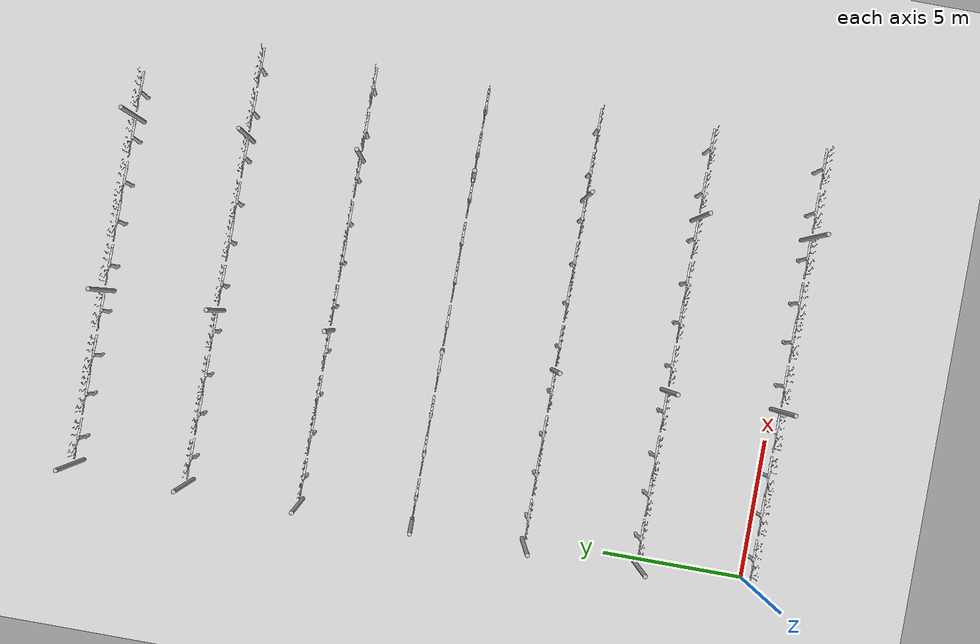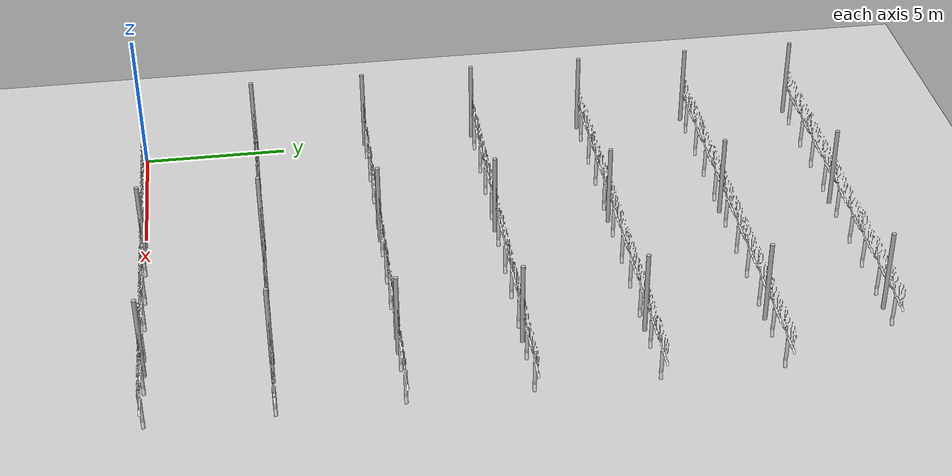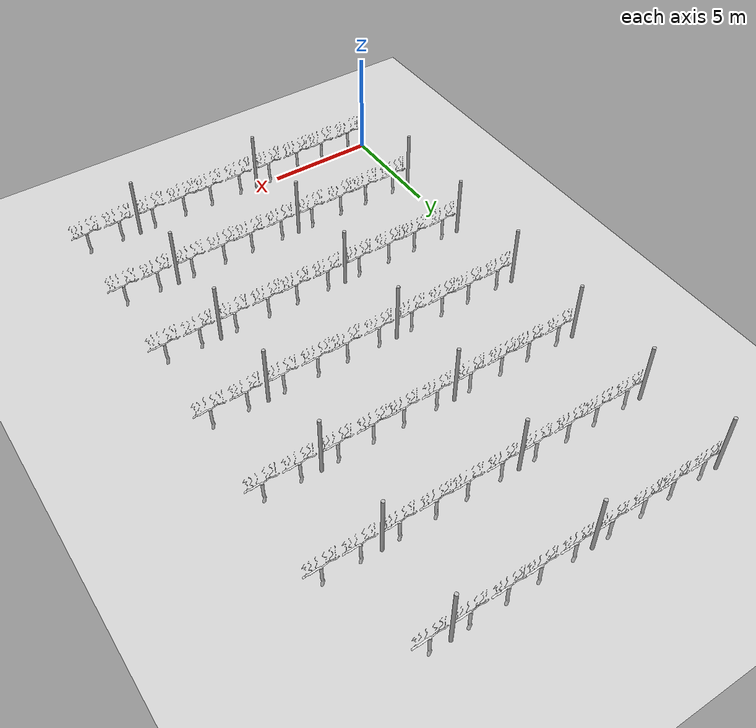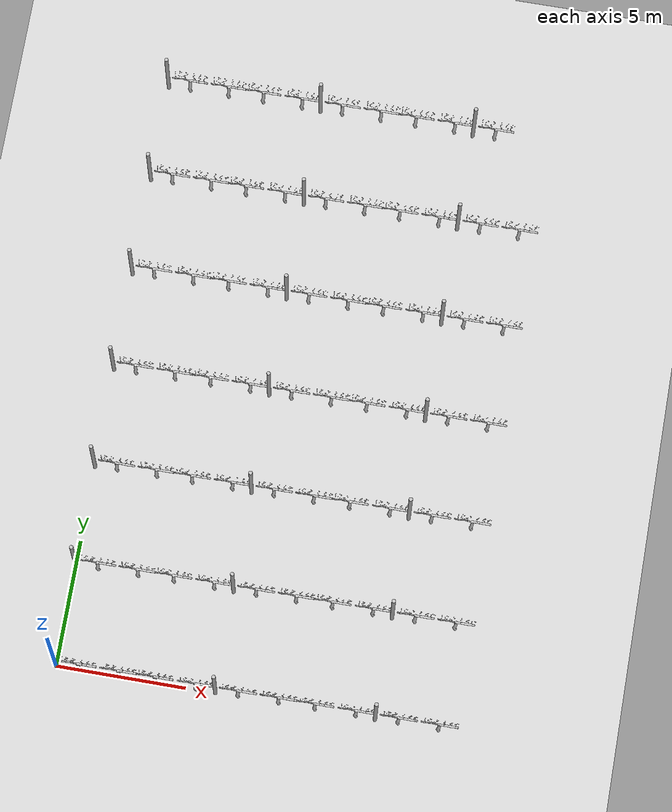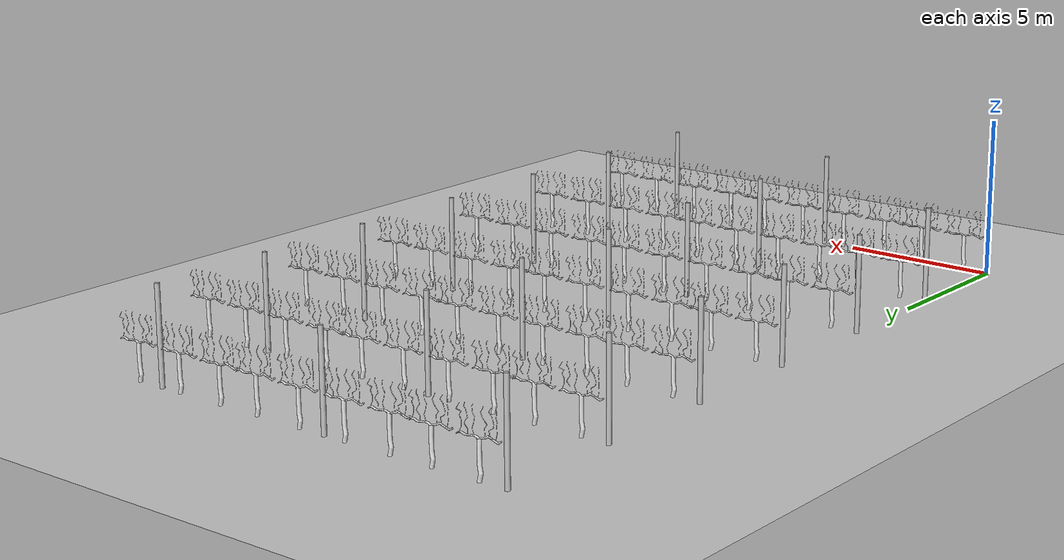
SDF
<sdf version="1.7">
 <world name="default">
  <model name="ground_plane">
   <static>true</static>
   <link name="link">
    <collision name="collision">
     <geometry><plane><normal>0 0 1</normal><size>100 100</size></plane></geometry>
    </collision>
    <visual name="visual"><geometry><plane><normal>0 0 1</normal><size>100 100</size></plane></geometry></visual>
   </link>
  </model>
  <model name="unit_cylinder_fila_1_palo_1">
   <static>true</static>
   <pose>0 0.0 1.5 0 0 0</pose>
   <link name="link">
    <collision name="collision">
     <geometry><cylinder><radius>0.075</radius><length>3</length></cylinder></geometry>
    </collision>
    <visual name="visual">
     <geometry><cylinder><radius>0.075</radius><length>3</length></cylinder></geometry>
    </visual>
   </link>
  </model>
  <model name="vinya_1_palo_1_fila_1">
   <static>true</static>
   <pose>0.9 0.0 0 0 0 0</pose>
   <link name="link">
    <collision name="collision">
     <geometry><mesh><uri>file://models/vinya/meshes/vinya.dae</uri></mesh></geometry>
    </collision>
    <visual name="visual">
     <geometry><mesh><uri>file://models/vinya/meshes/vinya.dae</uri></mesh></geometry>
    </visual>
   </link>
  </model>
  <model name="vinya_2_palo_1_fila_1">
   <static>true</static>
   <pose>2.46 0.0 0 0 0 0</pose>
   <link name="link">
    <collision name="collision">
     <geometry><mesh><uri>file://models/vinya/meshes/vinya.dae</uri></mesh></geometry>
    </collision>
    <visual name="visual">
     <geometry><mesh><uri>file://models/vinya/meshes/vinya.dae</uri></mesh></geometry>
    </visual>
   </link>
  </model>
  <model name="vinya_3_palo_1_fila_1">
   <static>true</static>
   <pose>3.86 0.0 0 0 0 0</pose>
   <link name="link">
    <collision name="collision">
     <geometry><mesh><uri>file://models/vinya/meshes/vinya.dae</uri></mesh></geometry>
    </collision>
    <visual name="visual">
     <geometry><mesh><uri>file://models/vinya/meshes/vinya.dae</uri></mesh></geometry>
    </visual>
   </link>
  </model>
  <model name="vinya_4_palo_1_fila_1">
   <static>true</static>
   <pose>5.435 0.0 0 0 0 0</pose>
   <link name="link">
    <collision name="collision">
     <geometry><mesh><uri>file://models/vinya/meshes/vinya.dae</uri></mesh></geometry>
    </collision>
    <visual name="visual">
     <geometry><mesh><uri>file://models/vinya/meshes/vinya.dae</uri></mesh></geometry>
    </visual>
   </link>
  </model>
  <model name="unit_cylinder_fila_1_palo_2">
   <static>true</static>
   <pose>6.159999999999999 0.0 1.5 0 0 0</pose>
   <link name="link">
    <collision name="collision">
     <geometry><cylinder><radius>0.075</radius><length>3</length></cylinder></geometry>
    </collision>
    <visual name="visual">
     <geometry><cylinder><radius>0.075</radius><length>3</length></cylinder></geometry>
    </visual>
   </link>
  </model>
  <model name="vinya_1_palo_2_fila_1">
   <static>true</static>
   <pose>7.06 0.0 0 0 0 0</pose>
   <link name="link">
    <collision name="collision">
     <geometry><mesh><uri>file://models/vinya/meshes/vinya.dae</uri></mesh></geometry>
    </collision>
    <visual name="visual">
     <geometry><mesh><uri>file://models/vinya/meshes/vinya.dae</uri></mesh></geometry>
    </visual>
   </link>
  </model>
  <model name="vinya_2_palo_2_fila_1">
   <static>true</static>
   <pose>8.62 0.0 0 0 0 0</pose>
   <link name="link">
    <collision name="collision">
     <geometry><mesh><uri>file://models/vinya/meshes/vinya.dae</uri></mesh></geometry>
    </collision>
    <visual name="visual">
     <geometry><mesh><uri>file://models/vinya/meshes/vinya.dae</uri></mesh></geometry>
    </visual>
   </link>
  </model>
  <model name="vinya_3_palo_2_fila_1">
   <static>true</static>
   <pose>10.02 0.0 0 0 0 0</pose>
   <link name="link">
    <collision name="collision">
     <geometry><mesh><uri>file://models/vinya/meshes/vinya.dae</uri></mesh></geometry>
    </collision>
    <visual name="visual">
     <geometry><mesh><uri>file://models/vinya/meshes/vinya.dae</uri></mesh></geometry>
    </visual>
   </link>
  </model>
  <model name="vinya_4_palo_2_fila_1">
   <static>true</static>
   <pose>11.594999999999999 0.0 0 0 0 0</pose>
   <link name="link">
    <collision name="collision">
     <geometry><mesh><uri>file://models/vinya/meshes/vinya.dae</uri></mesh></geometry>
    </collision>
    <visual name="visual">
     <geometry><mesh><uri>file://models/vinya/meshes/vinya.dae</uri></mesh></geometry>
    </visual>
   </link>
  </model>
  <model name="unit_cylinder_fila_1_palo_3">
   <static>true</static>
   <pose>12.319999999999999 0.0 1.5 0 0 0</pose>
   <link name="link">
    <collision name="collision">
     <geometry><cylinder><radius>0.075</radius><length>3</length></cylinder></geometry>
    </collision>
    <visual name="visual">
     <geometry><cylinder><radius>0.075</radius><length>3</length></cylinder></geometry>
    </visual>
   </link>
  </model>
  <model name="vinya_1_palo_3_fila_1">
   <static>true</static>
   <pose>13.219999999999999 0.0 0 0 0 0</pose>
   <link name="link">
    <collision name="collision">
     <geometry><mesh><uri>file://models/vinya/meshes/vinya.dae</uri></mesh></geometry>
    </collision>
    <visual name="visual">
     <geometry><mesh><uri>file://models/vinya/meshes/vinya.dae</uri></mesh></geometry>
    </visual>
   </link>
  </model>
  <model name="vinya_2_palo_3_fila_1">
   <static>true</static>
   <pose>14.78 0.0 0 0 0 0</pose>
   <link name="link">
    <collision name="collision">
     <geometry><mesh><uri>file://models/vinya/meshes/vinya.dae</uri></mesh></geometry>
    </collision>
    <visual name="visual">
     <geometry><mesh><uri>file://models/vinya/meshes/vinya.dae</uri></mesh></geometry>
    </visual>
   </link>
  </model>
  <model name="unit_cylinder_fila_2_palo_1">
   <static>true</static>
   <pose>0 4.0 1.5 0 0 0</pose>
   <link name="link">
    <collision name="collision">
     <geometry><cylinder><radius>0.075</radius><length>3</length></cylinder></geometry>
    </collision>
    <visual name="visual">
     <geometry><cylinder><radius>0.075</radius><length>3</length></cylinder></geometry>
    </visual>
   </link>
  </model>
  <model name="vinya_1_palo_1_fila_2">
   <static>true</static>
   <pose>0.9 4.0 0 0 0 0</pose>
   <link name="link">
    <collision name="collision">
     <geometry><mesh><uri>file://models/vinya/meshes/vinya.dae</uri></mesh></geometry>
    </collision>
    <visual name="visual">
     <geometry><mesh><uri>file://models/vinya/meshes/vinya.dae</uri></mesh></geometry>
    </visual>
   </link>
  </model>
  <model name="vinya_2_palo_1_fila_2">
   <static>true</static>
   <pose>2.46 4.0 0 0 0 0</pose>
   <link name="link">
    <collision name="collision">
     <geometry><mesh><uri>file://models/vinya/meshes/vinya.dae</uri></mesh></geometry>
    </collision>
    <visual name="visual">
     <geometry><mesh><uri>file://models/vinya/meshes/vinya.dae</uri></mesh></geometry>
    </visual>
   </link>
  </model>
  <model name="vinya_3_palo_1_fila_2">
   <static>true</static>
   <pose>3.86 4.0 0 0 0 0</pose>
   <link name="link">
    <collision name="collision">
     <geometry><mesh><uri>file://models/vinya/meshes/vinya.dae</uri></mesh></geometry>
    </collision>
    <visual name="visual">
     <geometry><mesh><uri>file://models/vinya/meshes/vinya.dae</uri></mesh></geometry>
    </visual>
   </link>
  </model>
  <model name="vinya_4_palo_1_fila_2">
   <static>true</static>
   <pose>5.435 4.0 0 0 0 0</pose>
   <link name="link">
    <collision name="collision">
     <geometry><mesh><uri>file://models/vinya/meshes/vinya.dae</uri></mesh></geometry>
    </collision>
    <visual name="visual">
     <geometry><mesh><uri>file://models/vinya/meshes/vinya.dae</uri></mesh></geometry>
    </visual>
   </link>
  </model>
  <model name="unit_cylinder_fila_2_palo_2">
   <static>true</static>
   <pose>6.159999999999999 4.0 1.5 0 0 0</pose>
   <link name="link">
    <collision name="collision">
     <geometry><cylinder><radius>0.075</radius><length>3</length></cylinder></geometry>
    </collision>
    <visual name="visual">
     <geometry><cylinder><radius>0.075</radius><length>3</length></cylinder></geometry>
    </visual>
   </link>
  </model>
  <model name="vinya_1_palo_2_fila_2">
   <static>true</static>
   <pose>7.06 4.0 0 0 0 0</pose>
   <link name="link">
    <collision name="collision">
     <geometry><mesh><uri>file://models/vinya/meshes/vinya.dae</uri></mesh></geometry>
    </collision>
    <visual name="visual">
     <geometry><mesh><uri>file://models/vinya/meshes/vinya.dae</uri></mesh></geometry>
    </visual>
   </link>
  </model>
  <model name="vinya_2_palo_2_fila_2">
   <static>true</static>
   <pose>8.62 4.0 0 0 0 0</pose>
   <link name="link">
    <collision name="collision">
     <geometry><mesh><uri>file://models/vinya/meshes/vinya.dae</uri></mesh></geometry>
    </collision>
    <visual name="visual">
     <geometry><mesh><uri>file://models/vinya/meshes/vinya.dae</uri></mesh></geometry>
    </visual>
   </link>
  </model>
  <model name="vinya_3_palo_2_fila_2">
   <static>true</static>
   <pose>10.02 4.0 0 0 0 0</pose>
   <link name="link">
    <collision name="collision">
     <geometry><mesh><uri>file://models/vinya/meshes/vinya.dae</uri></mesh></geometry>
    </collision>
    <visual name="visual">
     <geometry><mesh><uri>file://models/vinya/meshes/vinya.dae</uri></mesh></geometry>
    </visual>
   </link>
  </model>
  <model name="vinya_4_palo_2_fila_2">
   <static>true</static>
   <pose>11.594999999999999 4.0 0 0 0 0</pose>
   <link name="link">
    <collision name="collision">
     <geometry><mesh><uri>file://models/vinya/meshes/vinya.dae</uri></mesh></geometry>
    </collision>
    <visual name="visual">
     <geometry><mesh><uri>file://models/vinya/meshes/vinya.dae</uri></mesh></geometry>
    </visual>
   </link>
  </model>
  <model name="unit_cylinder_fila_2_palo_3">
   <static>true</static>
   <pose>12.319999999999999 4.0 1.5 0 0 0</pose>
   <link name="link">
    <collision name="collision">
     <geometry><cylinder><radius>0.075</radius><length>3</length></cylinder></geometry>
    </collision>
    <visual name="visual">
     <geometry><cylinder><radius>0.075</radius><length>3</length></cylinder></geometry>
    </visual>
   </link>
  </model>
  <model name="vinya_1_palo_3_fila_2">
   <static>true</static>
   <pose>13.219999999999999 4.0 0 0 0 0</pose>
   <link name="link">
    <collision name="collision">
     <geometry><mesh><uri>file://models/vinya/meshes/vinya.dae</uri></mesh></geometry>
    </collision>
    <visual name="visual">
     <geometry><mesh><uri>file://models/vinya/meshes/vinya.dae</uri></mesh></geometry>
    </visual>
   </link>
  </model>
  <model name="vinya_2_palo_3_fila_2">
   <static>true</static>
   <pose>14.78 4.0 0 0 0 0</pose>
   <link name="link">
    <collision name="collision">
     <geometry><mesh><uri>file://models/vinya/meshes/vinya.dae</uri></mesh></geometry>
    </collision>
    <visual name="visual">
     <geometry><mesh><uri>file://models/vinya/meshes/vinya.dae</uri></mesh></geometry>
    </visual>
   </link>
  </model>
  <model name="unit_cylinder_fila_3_palo_1">
   <static>true</static>
   <pose>0 8.0 1.5 0 0 0</pose>
   <link name="link">
    <collision name="collision">
     <geometry><cylinder><radius>0.075</radius><length>3</length></cylinder></geometry>
    </collision>
    <visual name="visual">
     <geometry><cylinder><radius>0.075</radius><length>3</length></cylinder></geometry>
    </visual>
   </link>
  </model>
  <model name="vinya_1_palo_1_fila_3">
   <static>true</static>
   <pose>0.9 8.0 0 0 0 0</pose>
   <link name="link">
    <collision name="collision">
     <geometry><mesh><uri>file://models/vinya/meshes/vinya.dae</uri></mesh></geometry>
    </collision>
    <visual name="visual">
     <geometry><mesh><uri>file://models/vinya/meshes/vinya.dae</uri></mesh></geometry>
    </visual>
   </link>
  </model>
  <model name="vinya_2_palo_1_fila_3">
   <static>true</static>
   <pose>2.46 8.0 0 0 0 0</pose>
   <link name="link">
    <collision name="collision">
     <geometry><mesh><uri>file://models/vinya/meshes/vinya.dae</uri></mesh></geometry>
    </collision>
    <visual name="visual">
     <geometry><mesh><uri>file://models/vinya/meshes/vinya.dae</uri></mesh></geometry>
    </visual>
   </link>
  </model>
  <model name="vinya_3_palo_1_fila_3">
   <static>true</static>
   <pose>3.86 8.0 0 0 0 0</pose>
   <link name="link">
    <collision name="collision">
     <geometry><mesh><uri>file://models/vinya/meshes/vinya.dae</uri></mesh></geometry>
    </collision>
    <visual name="visual">
     <geometry><mesh><uri>file://models/vinya/meshes/vinya.dae</uri></mesh></geometry>
    </visual>
   </link>
  </model>
  <model name="vinya_4_palo_1_fila_3">
   <static>true</static>
   <pose>5.435 8.0 0 0 0 0</pose>
   <link name="link">
    <collision name="collision">
     <geometry><mesh><uri>file://models/vinya/meshes/vinya.dae</uri></mesh></geometry>
    </collision>
    <visual name="visual">
     <geometry><mesh><uri>file://models/vinya/meshes/vinya.dae</uri></mesh></geometry>
    </visual>
   </link>
  </model>
  <model name="unit_cylinder_fila_3_palo_2">
   <static>true</static>
   <pose>6.159999999999999 8.0 1.5 0 0 0</pose>
   <link name="link">
    <collision name="collision">
     <geometry><cylinder><radius>0.075</radius><length>3</length></cylinder></geometry>
    </collision>
    <visual name="visual">
     <geometry><cylinder><radius>0.075</radius><length>3</length></cylinder></geometry>
    </visual>
   </link>
  </model>
  <model name="vinya_1_palo_2_fila_3">
   <static>true</static>
   <pose>7.06 8.0 0 0 0 0</pose>
   <link name="link">
    <collision name="collision">
     <geometry><mesh><uri>file://models/vinya/meshes/vinya.dae</uri></mesh></geometry>
    </collision>
    <visual name="visual">
     <geometry><mesh><uri>file://models/vinya/meshes/vinya.dae</uri></mesh></geometry>
    </visual>
   </link>
  </model>
  <model name="vinya_2_palo_2_fila_3">
   <static>true</static>
   <pose>8.62 8.0 0 0 0 0</pose>
   <link name="link">
    <collision name="collision">
     <geometry><mesh><uri>file://models/vinya/meshes/vinya.dae</uri></mesh></geometry>
    </collision>
    <visual name="visual">
     <geometry><mesh><uri>file://models/vinya/meshes/vinya.dae</uri></mesh></geometry>
    </visual>
   </link>
  </model>
  <model name="vinya_3_palo_2_fila_3">
   <static>true</static>
   <pose>10.02 8.0 0 0 0 0</pose>
   <link name="link">
    <collision name="collision">
     <geometry><mesh><uri>file://models/vinya/meshes/vinya.dae</uri></mesh></geometry>
    </collision>
    <visual name="visual">
     <geometry><mesh><uri>file://models/vinya/meshes/vinya.dae</uri></mesh></geometry>
    </visual>
   </link>
  </model>
  <model name="vinya_4_palo_2_fila_3">
   <static>true</static>
   <pose>11.594999999999999 8.0 0 0 0 0</pose>
   <link name="link">
    <collision name="collision">
     <geometry><mesh><uri>file://models/vinya/meshes/vinya.dae</uri></mesh></geometry>
    </collision>
    <visual name="visual">
     <geometry><mesh><uri>file://models/vinya/meshes/vinya.dae</uri></mesh></geometry>
    </visual>
   </link>
  </model>
  <model name="unit_cylinder_fila_3_palo_3">
   <static>true</static>
   <pose>12.319999999999999 8.0 1.5 0 0 0</pose>
   <link name="link">
    <collision name="collision">
     <geometry><cylinder><radius>0.075</radius><length>3</length></cylinder></geometry>
    </collision>
    <visual name="visual">
     <geometry><cylinder><radius>0.075</radius><length>3</length></cylinder></geometry>
    </visual>
   </link>
  </model>
  <model name="vinya_1_palo_3_fila_3">
   <static>true</static>
   <pose>13.219999999999999 8.0 0 0 0 0</pose>
   <link name="link">
    <collision name="collision">
     <geometry><mesh><uri>file://models/vinya/meshes/vinya.dae</uri></mesh></geometry>
    </collision>
    <visual name="visual">
     <geometry><mesh><uri>file://models/vinya/meshes/vinya.dae</uri></mesh></geometry>
    </visual>
   </link>
  </model>
  <model name="vinya_2_palo_3_fila_3">
   <static>true</static>
   <pose>14.78 8.0 0 0 0 0</pose>
   <link name="link">
    <collision name="collision">
     <geometry><mesh><uri>file://models/vinya/meshes/vinya.dae</uri></mesh></geometry>
    </collision>
    <visual name="visual">
     <geometry><mesh><uri>file://models/vinya/meshes/vinya.dae</uri></mesh></geometry>
    </visual>
   </link>
  </model>
  <model name="unit_cylinder_fila_4_palo_1">
   <static>true</static>
   <pose>0 12.0 1.5 0 0 0</pose>
   <link name="link">
    <collision name="collision">
     <geometry><cylinder><radius>0.075</radius><length>3</length></cylinder></geometry>
    </collision>
    <visual name="visual">
     <geometry><cylinder><radius>0.075</radius><length>3</length></cylinder></geometry>
    </visual>
   </link>
  </model>
  <model name="vinya_1_palo_1_fila_4">
   <static>true</static>
   <pose>0.9 12.0 0 0 0 0</pose>
   <link name="link">
    <collision name="collision">
     <geometry><mesh><uri>file://models/vinya/meshes/vinya.dae</uri></mesh></geometry>
    </collision>
    <visual name="visual">
     <geometry><mesh><uri>file://models/vinya/meshes/vinya.dae</uri></mesh></geometry>
    </visual>
   </link>
  </model>
  <model name="vinya_2_palo_1_fila_4">
   <static>true</static>
   <pose>2.46 12.0 0 0 0 0</pose>
   <link name="link">
    <collision name="collision">
     <geometry><mesh><uri>file://models/vinya/meshes/vinya.dae</uri></mesh></geometry>
    </collision>
    <visual name="visual">
     <geometry><mesh><uri>file://models/vinya/meshes/vinya.dae</uri></mesh></geometry>
    </visual>
   </link>
  </model>
  <model name="vinya_3_palo_1_fila_4">
   <static>true</static>
   <pose>3.86 12.0 0 0 0 0</pose>
   <link name="link">
    <collision name="collision">
     <geometry><mesh><uri>file://models/vinya/meshes/vinya.dae</uri></mesh></geometry>
    </collision>
    <visual name="visual">
     <geometry><mesh><uri>file://models/vinya/meshes/vinya.dae</uri></mesh></geometry>
    </visual>
   </link>
  </model>
  <model name="vinya_4_palo_1_fila_4">
   <static>true</static>
   <pose>5.435 12.0 0 0 0 0</pose>
   <link name="link">
    <collision name="collision">
     <geometry><mesh><uri>file://models/vinya/meshes/vinya.dae</uri></mesh></geometry>
    </collision>
    <visual name="visual">
     <geometry><mesh><uri>file://models/vinya/meshes/vinya.dae</uri></mesh></geometry>
    </visual>
   </link>
  </model>
  <model name="unit_cylinder_fila_4_palo_2">
   <static>true</static>
   <pose>6.159999999999999 12.0 1.5 0 0 0</pose>
   <link name="link">
    <collision name="collision">
     <geometry><cylinder><radius>0.075</radius><length>3</length></cylinder></geometry>
    </collision>
    <visual name="visual">
     <geometry><cylinder><radius>0.075</radius><length>3</length></cylinder></geometry>
    </visual>
   </link>
  </model>
  <model name="vinya_1_palo_2_fila_4">
   <static>true</static>
   <pose>7.06 12.0 0 0 0 0</pose>
   <link name="link">
    <collision name="collision">
     <geometry><mesh><uri>file://models/vinya/meshes/vinya.dae</uri></mesh></geometry>
    </collision>
    <visual name="visual">
     <geometry><mesh><uri>file://models/vinya/meshes/vinya.dae</uri></mesh></geometry>
    </visual>
   </link>
  </model>
  <model name="vinya_2_palo_2_fila_4">
   <static>true</static>
   <pose>8.62 12.0 0 0 0 0</pose>
   <link name="link">
    <collision name="collision">
     <geometry><mesh><uri>file://models/vinya/meshes/vinya.dae</uri></mesh></geometry>
    </collision>
    <visual name="visual">
     <geometry><mesh><uri>file://models/vinya/meshes/vinya.dae</uri></mesh></geometry>
    </visual>
   </link>
  </model>
  <model name="vinya_3_palo_2_fila_4">
   <static>true</static>
   <pose>10.02 12.0 0 0 0 0</pose>
   <link name="link">
    <collision name="collision">
     <geometry><mesh><uri>file://models/vinya/meshes/vinya.dae</uri></mesh></geometry>
    </collision>
    <visual name="visual">
     <geometry><mesh><uri>file://models/vinya/meshes/vinya.dae</uri></mesh></geometry>
    </visual>
   </link>
  </model>
  <model name="vinya_4_palo_2_fila_4">
   <static>true</static>
   <pose>11.594999999999999 12.0 0 0 0 0</pose>
   <link name="link">
    <collision name="collision">
     <geometry><mesh><uri>file://models/vinya/meshes/vinya.dae</uri></mesh></geometry>
    </collision>
    <visual name="visual">
     <geometry><mesh><uri>file://models/vinya/meshes/vinya.dae</uri></mesh></geometry>
    </visual>
   </link>
  </model>
  <model name="unit_cylinder_fila_4_palo_3">
   <static>true</static>
   <pose>12.319999999999999 12.0 1.5 0 0 0</pose>
   <link name="link">
    <collision name="collision">
     <geometry><cylinder><radius>0.075</radius><length>3</length></cylinder></geometry>
    </collision>
    <visual name="visual">
     <geometry><cylinder><radius>0.075</radius><length>3</length></cylinder></geometry>
    </visual>
   </link>
  </model>
  <model name="vinya_1_palo_3_fila_4">
   <static>true</static>
   <pose>13.219999999999999 12.0 0 0 0 0</pose>
   <link name="link">
    <collision name="collision">
     <geometry><mesh><uri>file://models/vinya/meshes/vinya.dae</uri></mesh></geometry>
    </collision>
    <visual name="visual">
     <geometry><mesh><uri>file://models/vinya/meshes/vinya.dae</uri></mesh></geometry>
    </visual>
   </link>
  </model>
  <model name="vinya_2_palo_3_fila_4">
   <static>true</static>
   <pose>14.78 12.0 0 0 0 0</pose>
   <link name="link">
    <collision name="collision">
     <geometry><mesh><uri>file://models/vinya/meshes/vinya.dae</uri></mesh></geometry>
    </collision>
    <visual name="visual">
     <geometry><mesh><uri>file://models/vinya/meshes/vinya.dae</uri></mesh></geometry>
    </visual>
   </link>
  </model>
  <model name="unit_cylinder_fila_5_palo_1">
   <static>true</static>
   <pose>0 16.0 1.5 0 0 0</pose>
   <link name="link">
    <collision name="collision">
     <geometry><cylinder><radius>0.075</radius><length>3</length></cylinder></geometry>
    </collision>
    <visual name="visual">
     <geometry><cylinder><radius>0.075</radius><length>3</length></cylinder></geometry>
    </visual>
   </link>
  </model>
  <model name="vinya_1_palo_1_fila_5">
   <static>true</static>
   <pose>0.9 16.0 0 0 0 0</pose>
   <link name="link">
    <collision name="collision">
     <geometry><mesh><uri>file://models/vinya/meshes/vinya.dae</uri></mesh></geometry>
    </collision>
    <visual name="visual">
     <geometry><mesh><uri>file://models/vinya/meshes/vinya.dae</uri></mesh></geometry>
    </visual>
   </link>
  </model>
  <model name="vinya_2_palo_1_fila_5">
   <static>true</static>
   <pose>2.46 16.0 0 0 0 0</pose>
   <link name="link">
    <collision name="collision">
     <geometry><mesh><uri>file://models/vinya/meshes/vinya.dae</uri></mesh></geometry>
    </collision>
    <visual name="visual">
     <geometry><mesh><uri>file://models/vinya/meshes/vinya.dae</uri></mesh></geometry>
    </visual>
   </link>
  </model>
  <model name="vinya_3_palo_1_fila_5">
   <static>true</static>
   <pose>3.86 16.0 0 0 0 0</pose>
   <link name="link">
    <collision name="collision">
     <geometry><mesh><uri>file://models/vinya/meshes/vinya.dae</uri></mesh></geometry>
    </collision>
    <visual name="visual">
     <geometry><mesh><uri>file://models/vinya/meshes/vinya.dae</uri></mesh></geometry>
    </visual>
   </link>
  </model>
  <model name="vinya_4_palo_1_fila_5">
   <static>true</static>
   <pose>5.435 16.0 0 0 0 0</pose>
   <link name="link">
    <collision name="collision">
     <geometry><mesh><uri>file://models/vinya/meshes/vinya.dae</uri></mesh></geometry>
    </collision>
    <visual name="visual">
     <geometry><mesh><uri>file://models/vinya/meshes/vinya.dae</uri></mesh></geometry>
    </visual>
   </link>
  </model>
  <model name="unit_cylinder_fila_5_palo_2">
   <static>true</static>
   <pose>6.159999999999999 16.0 1.5 0 0 0</pose>
   <link name="link">
    <collision name="collision">
     <geometry><cylinder><radius>0.075</radius><length>3</length></cylinder></geometry>
    </collision>
    <visual name="visual">
     <geometry><cylinder><radius>0.075</radius><length>3</length></cylinder></geometry>
    </visual>
   </link>
  </model>
  <model name="vinya_1_palo_2_fila_5">
   <static>true</static>
   <pose>7.06 16.0 0 0 0 0</pose>
   <link name="link">
    <collision name="collision">
     <geometry><mesh><uri>file://models/vinya/meshes/vinya.dae</uri></mesh></geometry>
    </collision>
    <visual name="visual">
     <geometry><mesh><uri>file://models/vinya/meshes/vinya.dae</uri></mesh></geometry>
    </visual>
   </link>
  </model>
  <model name="vinya_2_palo_2_fila_5">
   <static>true</static>
   <pose>8.62 16.0 0 0 0 0</pose>
   <link name="link">
    <collision name="collision">
     <geometry><mesh><uri>file://models/vinya/meshes/vinya.dae</uri></mesh></geometry>
    </collision>
    <visual name="visual">
     <geometry><mesh><uri>file://models/vinya/meshes/vinya.dae</uri></mesh></geometry>
    </visual>
   </link>
  </model>
  <model name="vinya_3_palo_2_fila_5">
   <static>true</static>
   <pose>10.02 16.0 0 0 0 0</pose>
   <link name="link">
    <collision name="collision">
     <geometry><mesh><uri>file://models/vinya/meshes/vinya.dae</uri></mesh></geometry>
    </collision>
    <visual name="visual">
     <geometry><mesh><uri>file://models/vinya/meshes/vinya.dae</uri></mesh></geometry>
    </visual>
   </link>
  </model>
  <model name="vinya_4_palo_2_fila_5">
   <static>true</static>
   <pose>11.594999999999999 16.0 0 0 0 0</pose>
   <link name="link">
    <collision name="collision">
     <geometry><mesh><uri>file://models/vinya/meshes/vinya.dae</uri></mesh></geometry>
    </collision>
    <visual name="visual">
     <geometry><mesh><uri>file://models/vinya/meshes/vinya.dae</uri></mesh></geometry>
    </visual>
   </link>
  </model>
  <model name="unit_cylinder_fila_5_palo_3">
   <static>true</static>
   <pose>12.319999999999999 16.0 1.5 0 0 0</pose>
   <link name="link">
    <collision name="collision">
     <geometry><cylinder><radius>0.075</radius><length>3</length></cylinder></geometry>
    </collision>
    <visual name="visual">
     <geometry><cylinder><radius>0.075</radius><length>3</length></cylinder></geometry>
    </visual>
   </link>
  </model>
  <model name="vinya_1_palo_3_fila_5">
   <static>true</static>
   <pose>13.219999999999999 16.0 0 0 0 0</pose>
   <link name="link">
    <collision name="collision">
     <geometry><mesh><uri>file://models/vinya/meshes/vinya.dae</uri></mesh></geometry>
    </collision>
    <visual name="visual">
     <geometry><mesh><uri>file://models/vinya/meshes/vinya.dae</uri></mesh></geometry>
    </visual>
   </link>
  </model>
  <model name="vinya_2_palo_3_fila_5">
   <static>true</static>
   <pose>14.78 16.0 0 0 0 0</pose>
   <link name="link">
    <collision name="collision">
     <geometry><mesh><uri>file://models/vinya/meshes/vinya.dae</uri></mesh></geometry>
    </collision>
    <visual name="visual">
     <geometry><mesh><uri>file://models/vinya/meshes/vinya.dae</uri></mesh></geometry>
    </visual>
   </link>
  </model>
  <model name="unit_cylinder_fila_6_palo_1">
   <static>true</static>
   <pose>0 20.0 1.5 0 0 0</pose>
   <link name="link">
    <collision name="collision">
     <geometry><cylinder><radius>0.075</radius><length>3</length></cylinder></geometry>
    </collision>
    <visual name="visual">
     <geometry><cylinder><radius>0.075</radius><length>3</length></cylinder></geometry>
    </visual>
   </link>
  </model>
  <model name="vinya_1_palo_1_fila_6">
   <static>true</static>
   <pose>0.9 20.0 0 0 0 0</pose>
   <link name="link">
    <collision name="collision">
     <geometry><mesh><uri>file://models/vinya/meshes/vinya.dae</uri></mesh></geometry>
    </collision>
    <visual name="visual">
     <geometry><mesh><uri>file://models/vinya/meshes/vinya.dae</uri></mesh></geometry>
    </visual>
   </link>
  </model>
  <model name="vinya_2_palo_1_fila_6">
   <static>true</static>
   <pose>2.46 20.0 0 0 0 0</pose>
   <link name="link">
    <collision name="collision">
     <geometry><mesh><uri>file://models/vinya/meshes/vinya.dae</uri></mesh></geometry>
    </collision>
    <visual name="visual">
     <geometry><mesh><uri>file://models/vinya/meshes/vinya.dae</uri></mesh></geometry>
    </visual>
   </link>
  </model>
  <model name="vinya_3_palo_1_fila_6">
   <static>true</static>
   <pose>3.86 20.0 0 0 0 0</pose>
   <link name="link">
    <collision name="collision">
     <geometry><mesh><uri>file://models/vinya/meshes/vinya.dae</uri></mesh></geometry>
    </collision>
    <visual name="visual">
     <geometry><mesh><uri>file://models/vinya/meshes/vinya.dae</uri></mesh></geometry>
    </visual>
   </link>
  </model>
  <model name="vinya_4_palo_1_fila_6">
   <static>true</static>
   <pose>5.435 20.0 0 0 0 0</pose>
   <link name="link">
    <collision name="collision">
     <geometry><mesh><uri>file://models/vinya/meshes/vinya.dae</uri></mesh></geometry>
    </collision>
    <visual name="visual">
     <geometry><mesh><uri>file://models/vinya/meshes/vinya.dae</uri></mesh></geometry>
    </visual>
   </link>
  </model>
  <model name="unit_cylinder_fila_6_palo_2">
   <static>true</static>
   <pose>6.159999999999999 20.0 1.5 0 0 0</pose>
   <link name="link">
    <collision name="collision">
     <geometry><cylinder><radius>0.075</radius><length>3</length></cylinder></geometry>
    </collision>
    <visual name="visual">
     <geometry><cylinder><radius>0.075</radius><length>3</length></cylinder></geometry>
    </visual>
   </link>
  </model>
  <model name="vinya_1_palo_2_fila_6">
   <static>true</static>
   <pose>7.06 20.0 0 0 0 0</pose>
   <link name="link">
    <collision name="collision">
     <geometry><mesh><uri>file://models/vinya/meshes/vinya.dae</uri></mesh></geometry>
    </collision>
    <visual name="visual">
     <geometry><mesh><uri>file://models/vinya/meshes/vinya.dae</uri></mesh></geometry>
    </visual>
   </link>
  </model>
  <model name="vinya_2_palo_2_fila_6">
   <static>true</static>
   <pose>8.62 20.0 0 0 0 0</pose>
   <link name="link">
    <collision name="collision">
     <geometry><mesh><uri>file://models/vinya/meshes/vinya.dae</uri></mesh></geometry>
    </collision>
    <visual name="visual">
     <geometry><mesh><uri>file://models/vinya/meshes/vinya.dae</uri></mesh></geometry>
    </visual>
   </link>
  </model>
  <model name="vinya_3_palo_2_fila_6">
   <static>true</static>
   <pose>10.02 20.0 0 0 0 0</pose>
   <link name="link">
    <collision name="collision">
     <geometry><mesh><uri>file://models/vinya/meshes/vinya.dae</uri></mesh></geometry>
    </collision>
    <visual name="visual">
     <geometry><mesh><uri>file://models/vinya/meshes/vinya.dae</uri></mesh></geometry>
    </visual>
   </link>
  </model>
  <model name="vinya_4_palo_2_fila_6">
   <static>true</static>
   <pose>11.594999999999999 20.0 0 0 0 0</pose>
   <link name="link">
    <collision name="collision">
     <geometry><mesh><uri>file://models/vinya/meshes/vinya.dae</uri></mesh></geometry>
    </collision>
    <visual name="visual">
     <geometry><mesh><uri>file://models/vinya/meshes/vinya.dae</uri></mesh></geometry>
    </visual>
   </link>
  </model>
  <model name="unit_cylinder_fila_6_palo_3">
   <static>true</static>
   <pose>12.319999999999999 20.0 1.5 0 0 0</pose>
   <link name="link">
    <collision name="collision">
     <geometry><cylinder><radius>0.075</radius><length>3</length></cylinder></geometry>
    </collision>
    <visual name="visual">
     <geometry><cylinder><radius>0.075</radius><length>3</length></cylinder></geometry>
    </visual>
   </link>
  </model>
  <model name="vinya_1_palo_3_fila_6">
   <static>true</static>
   <pose>13.219999999999999 20.0 0 0 0 0</pose>
   <link name="link">
    <collision name="collision">
     <geometry><mesh><uri>file://models/vinya/meshes/vinya.dae</uri></mesh></geometry>
    </collision>
    <visual name="visual">
     <geometry><mesh><uri>file://models/vinya/meshes/vinya.dae</uri></mesh></geometry>
    </visual>
   </link>
  </model>
  <model name="vinya_2_palo_3_fila_6">
   <static>true</static>
   <pose>14.78 20.0 0 0 0 0</pose>
   <link name="link">
    <collision name="collision">
     <geometry><mesh><uri>file://models/vinya/meshes/vinya.dae</uri></mesh></geometry>
    </collision>
    <visual name="visual">
     <geometry><mesh><uri>file://models/vinya/meshes/vinya.dae</uri></mesh></geometry>
    </visual>
   </link>
  </model>
  <model name="unit_cylinder_fila_7_palo_1">
   <static>true</static>
   <pose>0 24.0 1.5 0 0 0</pose>
   <link name="link">
    <collision name="collision">
     <geometry><cylinder><radius>0.075</radius><length>3</length></cylinder></geometry>
    </collision>
    <visual name="visual">
     <geometry><cylinder><radius>0.075</radius><length>3</length></cylinder></geometry>
    </visual>
   </link>
  </model>
  <model name="vinya_1_palo_1_fila_7">
   <static>true</static>
   <pose>0.9 24.0 0 0 0 0</pose>
   <link name="link">
    <collision name="collision">
     <geometry><mesh><uri>file://models/vinya/meshes/vinya.dae</uri></mesh></geometry>
    </collision>
    <visual name="visual">
     <geometry><mesh><uri>file://models/vinya/meshes/vinya.dae</uri></mesh></geometry>
    </visual>
   </link>
  </model>
  <model name="vinya_2_palo_1_fila_7">
   <static>true</static>
   <pose>2.46 24.0 0 0 0 0</pose>
   <link name="link">
    <collision name="collision">
     <geometry><mesh><uri>file://models/vinya/meshes/vinya.dae</uri></mesh></geometry>
    </collision>
    <visual name="visual">
     <geometry><mesh><uri>file://models/vinya/meshes/vinya.dae</uri></mesh></geometry>
    </visual>
   </link>
  </model>
  <model name="vinya_3_palo_1_fila_7">
   <static>true</static>
   <pose>3.86 24.0 0 0 0 0</pose>
   <link name="link">
    <collision name="collision">
     <geometry><mesh><uri>file://models/vinya/meshes/vinya.dae</uri></mesh></geometry>
    </collision>
    <visual name="visual">
     <geometry><mesh><uri>file://models/vinya/meshes/vinya.dae</uri></mesh></geometry>
    </visual>
   </link>
  </model>
  <model name="vinya_4_palo_1_fila_7">
   <static>true</static>
   <pose>5.435 24.0 0 0 0 0</pose>
   <link name="link">
    <collision name="collision">
     <geometry><mesh><uri>file://models/vinya/meshes/vinya.dae</uri></mesh></geometry>
    </collision>
    <visual name="visual">
     <geometry><mesh><uri>file://models/vinya/meshes/vinya.dae</uri></mesh></geometry>
    </visual>
   </link>
  </model>
  <model name="unit_cylinder_fila_7_palo_2">
   <static>true</static>
   <pose>6.159999999999999 24.0 1.5 0 0 0</pose>
   <link name="link">
    <collision name="collision">
     <geometry><cylinder><radius>0.075</radius><length>3</length></cylinder></geometry>
    </collision>
    <visual name="visual">
     <geometry><cylinder><radius>0.075</radius><length>3</length></cylinder></geometry>
    </visual>
   </link>
  </model>
  <model name="vinya_1_palo_2_fila_7">
   <static>true</static>
   <pose>7.06 24.0 0 0 0 0</pose>
   <link name="link">
    <collision name="collision">
     <geometry><mesh><uri>file://models/vinya/meshes/vinya.dae</uri></mesh></geometry>
    </collision>
    <visual name="visual">
     <geometry><mesh><uri>file://models/vinya/meshes/vinya.dae</uri></mesh></geometry>
    </visual>
   </link>
  </model>
  <model name="vinya_2_palo_2_fila_7">
   <static>true</static>
   <pose>8.62 24.0 0 0 0 0</pose>
   <link name="link">
    <collision name="collision">
     <geometry><mesh><uri>file://models/vinya/meshes/vinya.dae</uri></mesh></geometry>
    </collision>
    <visual name="visual">
     <geometry><mesh><uri>file://models/vinya/meshes/vinya.dae</uri></mesh></geometry>
    </visual>
   </link>
  </model>
  <model name="vinya_3_palo_2_fila_7">
   <static>true</static>
   <pose>10.02 24.0 0 0 0 0</pose>
   <link name="link">
    <collision name="collision">
     <geometry><mesh><uri>file://models/vinya/meshes/vinya.dae</uri></mesh></geometry>
    </collision>
    <visual name="visual">
     <geometry><mesh><uri>file://models/vinya/meshes/vinya.dae</uri></mesh></geometry>
    </visual>
   </link>
  </model>
  <model name="vinya_4_palo_2_fila_7">
   <static>true</static>
   <pose>11.594999999999999 24.0 0 0 0 0</pose>
   <link name="link">
    <collision name="collision">
     <geometry><mesh><uri>file://models/vinya/meshes/vinya.dae</uri></mesh></geometry>
    </collision>
    <visual name="visual">
     <geometry><mesh><uri>file://models/vinya/meshes/vinya.dae</uri></mesh></geometry>
    </visual>
   </link>
  </model>
  <model name="unit_cylinder_fila_7_palo_3">
   <static>true</static>
   <pose>12.319999999999999 24.0 1.5 0 0 0</pose>
   <link name="link">
    <collision name="collision">
     <geometry><cylinder><radius>0.075</radius><length>3</length></cylinder></geometry>
    </collision>
    <visual name="visual">
     <geometry><cylinder><radius>0.075</radius><length>3</length></cylinder></geometry>
    </visual>
   </link>
  </model>
  <model name="vinya_1_palo_3_fila_7">
   <static>true</static>
   <pose>13.219999999999999 24.0 0 0 0 0</pose>
   <link name="link">
    <collision name="collision">
     <geometry><mesh><uri>file://models/vinya/meshes/vinya.dae</uri></mesh></geometry>
    </collision>
    <visual name="visual">
     <geometry><mesh><uri>file://models/vinya/meshes/vinya.dae</uri></mesh></geometry>
    </visual>
   </link>
  </model>
 </world>
</sdf>
